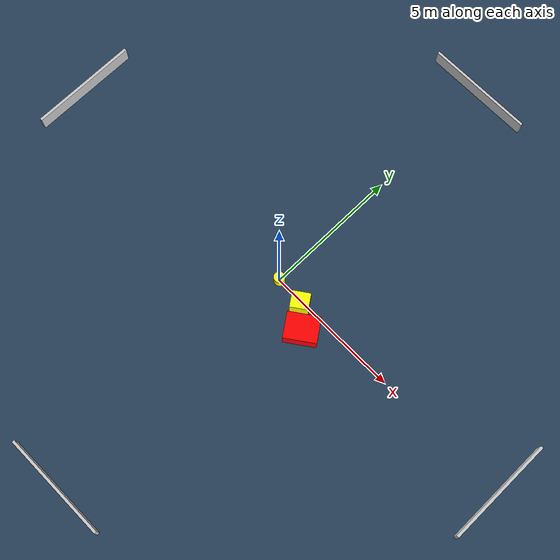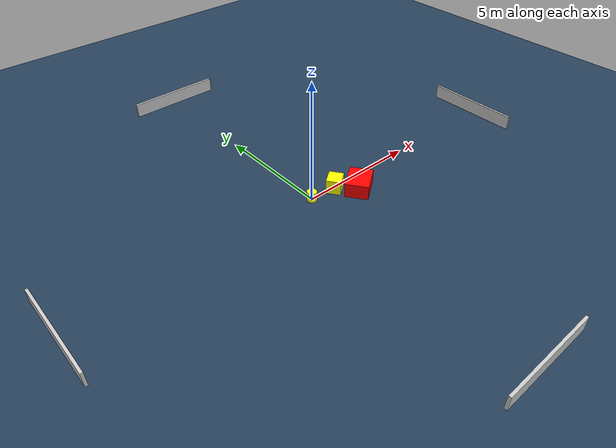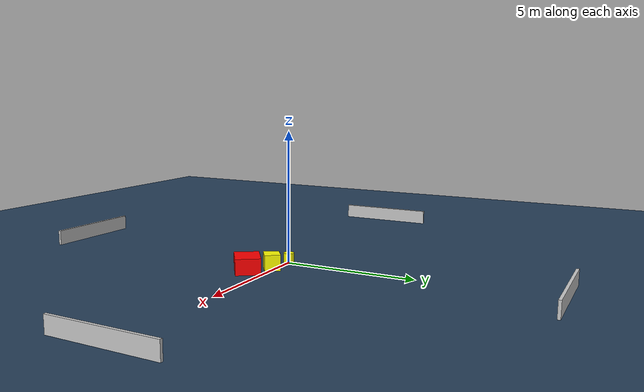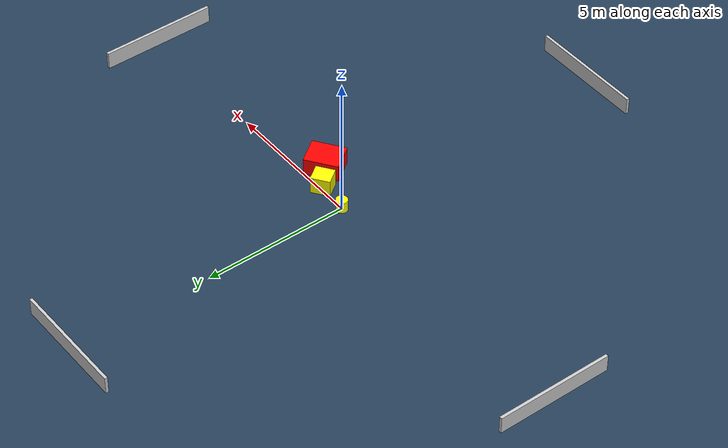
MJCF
<?xml version="1.0" ?>
<mujoco model="generated_environment">
  <option timestep="0.01" integrator="RK4" cone="elliptic"/>
  <default>
    <geom density="1"/>
  </default>
  <asset>
    <texture builtin="gradient" height="3072" name="skybox" rgb1="0.3 0.5 0.7" rgb2="0 0 0" type="skybox" width="512"/>
    <texture builtin="checker" height="300" name="groundplane" rgb1="0.2 0.3 0.4" rgb2="0.1 0.2 0.3" type="2d" width="300"/>
    <material name="groundplane" reflectance="0.2" texrepeat="5 5" texture="groundplane"/>
  </asset>
  <worldbody>
    <light dir="0 0 -1" directional="true" pos="0 0 1.5"/>
    <geom condim="3" friction="0.5 0.005 0.001" material="groundplane" name="floor" pos="0 0 0" size="0 0 0.05" type="plane"/>
    <body name="walls">
      <geom name="wall_1" condim="4" pos="-10.0 0.0 0.3" rgba="0.800000011920929 0.800000011920929 0.800000011920929 1.0" size="0.05 2.0 0.3" type="box"/>
      <geom name="wall_2" condim="4" pos="10.0 0.0 0.3" rgba="0.800000011920929 0.800000011920929 0.800000011920929 1.0" size="0.05 2.0 0.3" type="box"/>
      <geom name="wall_3" condim="4" pos="0.0 -10.0 0.3" rgba="0.800000011920929 0.800000011920929 0.800000011920929 1.0" size="2.0 0.05 0.3" type="box"/>
      <geom name="wall_4" condim="4" pos="0.0 10.0 0.3" rgba="0.800000011920929 0.800000011920929 0.800000011920929 1.0" size="2.0 0.05 0.3" type="box"/>
    </body>
    <body name="robot">
      <joint name="joint_x" type="slide" pos="0 0 0" axis="1 0 0"/>
      <joint name="joint_y" type="slide" pos="0 0 0" axis="0 1 0"/>
      <geom name="robot" type="cylinder" pos="0.0 0.0 0.2" size="0.2 0.2 0.0" mass="5.0" friction="1.0 0.005 0.0001" condim="4" rgba="1.0 1.0 0.0 1.0"/>
    </body>
    <body name="obstacle_1_movable">
      <geom name="obstacle_1_movable" condim="4" pos="1.105282074608683 -0.10404048517135088 0.3" euler="0 0 305.2368097852307" friction="0.0 0.005 0.001" rgba="1.0 1.0 0.0 1.0" size="0.29628008675635087 0.32447412629172406 0.3" type="box" mass="0.1"/>
      <joint type="free"/>
    </body>
    <body name="obstacle_2_static">
      <geom name="obstacle_2_static" condim="4" pos="1.8091457973011924 -0.7245321305993591 0.3" euler="0 0 35.38535705778961" friction="0.0 0.005 0.001" rgba="1.0 0.0 0.0 1.0" size="0.5820632570284788 0.467397686905286 0.3" type="box"/>
    </body>
  </worldbody>
  <actuator>
    <motor name="actuator_x" joint="joint_x" gear="1" ctrlrange="-1 1"/>
    <motor name="actuator_y" joint="joint_y" gear="1" ctrlrange="-1 1"/>
  </actuator>
</mujoco>
